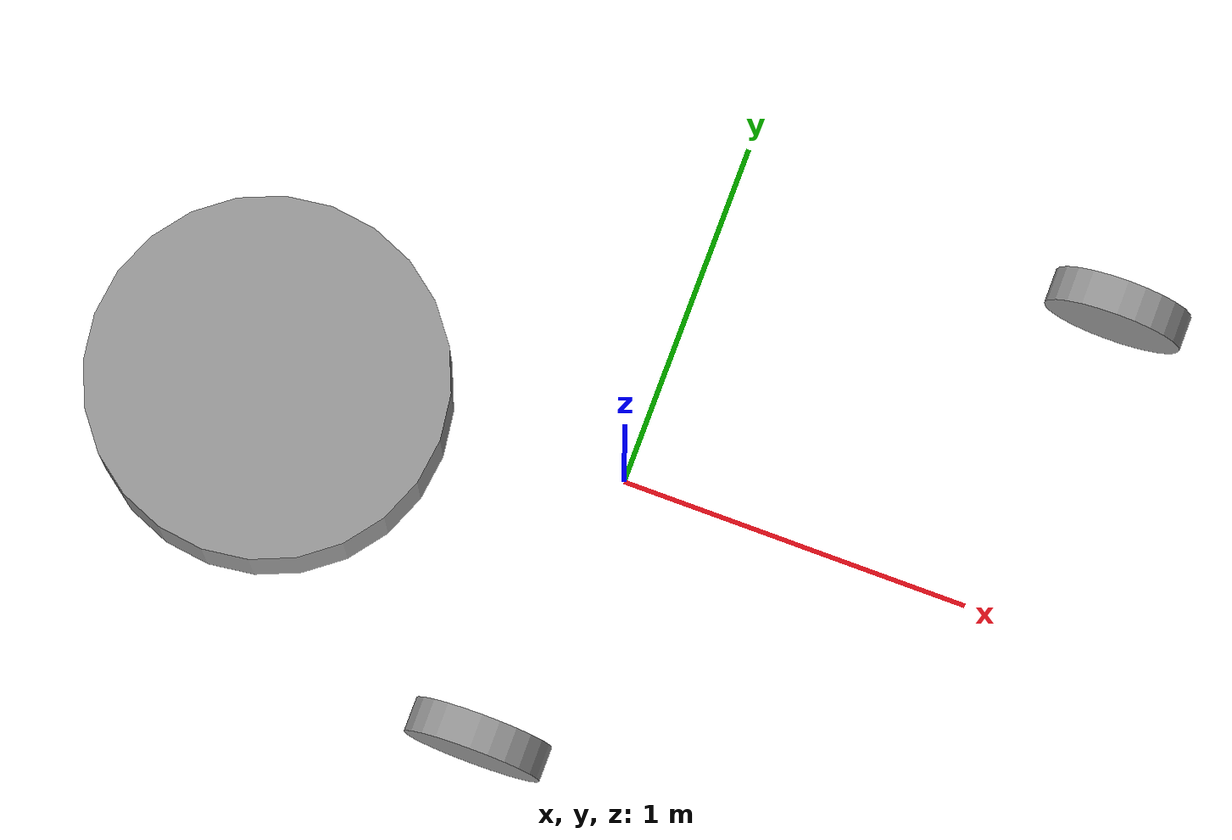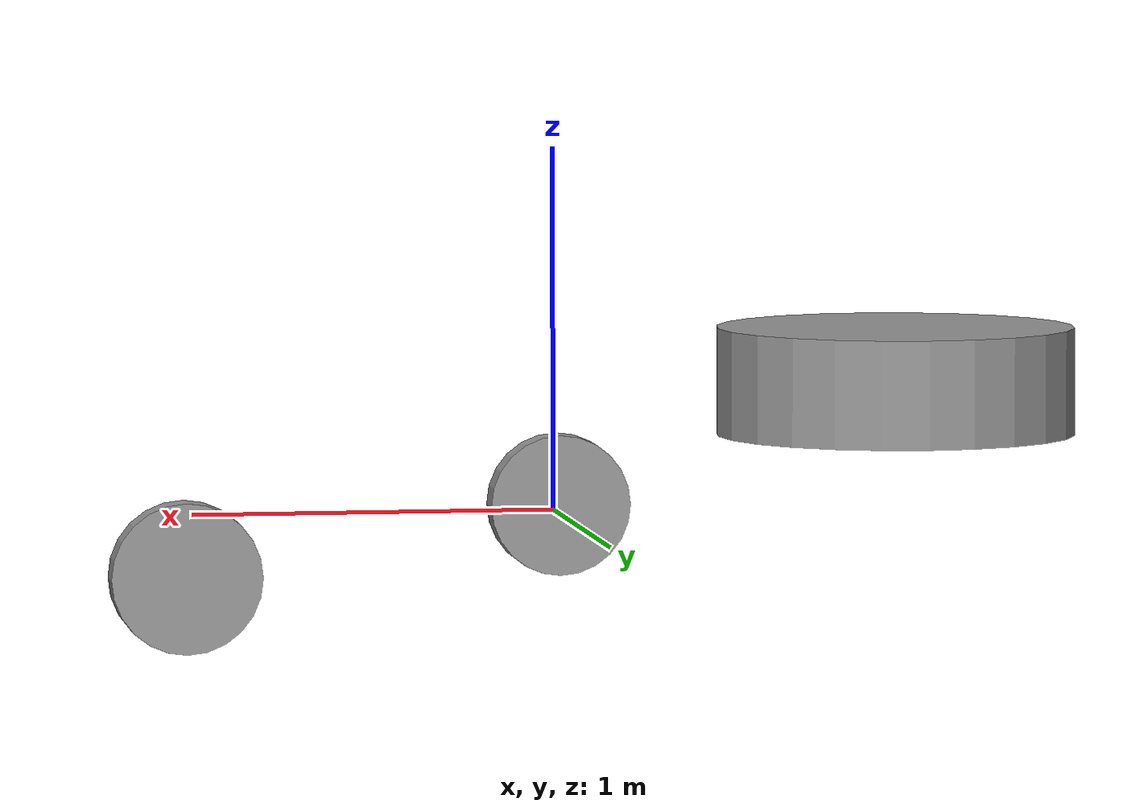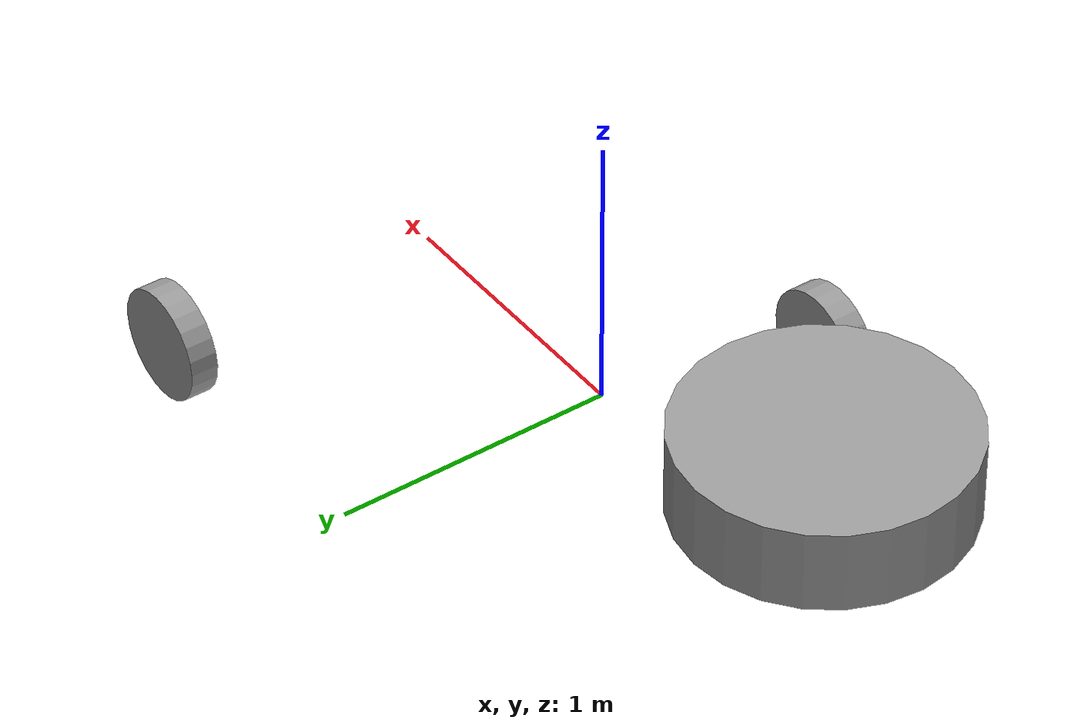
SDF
<?xml version='1.0'?>
<sdf version='1.6'>
  <model name='my_newrobot'>
    <link name='link_0_clone'>
      <pose frame=''>1.11966 0.941521 -0.066667 1.5707 -0 0</pose>
      <inertial>
        <mass>1</mass>
        <inertia>
          <ixx>0.145833</ixx>
          <ixy>0</ixy>
          <ixz>0</ixz>
          <iyy>0.145833</iyy>
          <iyz>0</iyz>
          <izz>0.125</izz>
        </inertia>
        <pose frame=''>0 0 0 0 -0 0</pose>
      </inertial>
      <self_collide>0</self_collide>
      <kinematic>0</kinematic>
      <visual name='visual'>
        <pose frame=''>0 0 0 0 -0 0</pose>
        <geometry>
          <cylinder>
            <radius>0.2</radius>
            <length>0.1</length>
          </cylinder>
        </geometry>
        <material>
          <lighting>1</lighting>
          <script>
            <uri>file://media/materials/scripts/gazebo.material</uri>
            <name>Gazebo/Grey</name>
          </script>
          <shader type='pixel'>
            <normal_map>__default__</normal_map>
          </shader>
          <ambient>0.3 0.3 0.3 1</ambient>
          <diffuse>0.7 0.7 0.7 1</diffuse>
          <specular>0.01 0.01 0.01 1</specular>
          <emissive>0 0 0 1</emissive>
        </material>
        <transparency>0</transparency>
        <cast_shadows>1</cast_shadows>
      </visual>
      <collision name='collision'>
        <laser_retro>0</laser_retro>
        <max_contacts>10</max_contacts>
        <pose frame=''>0 0 0 0 -0 0</pose>
        <geometry>
          <cylinder>
            <radius>0.2</radius>
            <length>0.1</length>
          </cylinder>
        </geometry>
        <surface>
          <friction>
            <ode>
              <mu>1</mu>
              <mu2>1</mu2>
              <fdir1>0 0 0</fdir1>
              <slip1>0</slip1>
              <slip2>0</slip2>
            </ode>
            <torsional>
              <coefficient>1</coefficient>
              <patch_radius>0</patch_radius>
              <surface_radius>0</surface_radius>
              <use_patch_radius>1</use_patch_radius>
              <ode>
                <slip>0</slip>
              </ode>
            </torsional>
          </friction>
          <bounce>
            <restitution_coefficient>0</restitution_coefficient>
            <threshold>1e+06</threshold>
          </bounce>
          <contact>
            <collide_without_contact>0</collide_without_contact>
            <collide_without_contact_bitmask>1</collide_without_contact_bitmask>
            <collide_bitmask>1</collide_bitmask>
            <ode>
              <soft_cfm>0</soft_cfm>
              <soft_erp>0.2</soft_erp>
              <kp>1e+13</kp>
              <kd>1</kd>
              <max_vel>0.01</max_vel>
              <min_depth>0</min_depth>
            </ode>
            <bullet>
              <split_impulse>1</split_impulse>
              <split_impulse_penetration_threshold>-0.01</split_impulse_penetration_threshold>
              <soft_cfm>0</soft_cfm>
              <soft_erp>0.2</soft_erp>
              <kp>1e+13</kp>
              <kd>1</kd>
            </bullet>
          </contact>
        </surface>
      </collision>
    </link>
    <link name='link_0_clone_clone'>
      <pose frame=''>-0.136268 -0.806931 -0.066667 1.5707 -0 0</pose>
      <inertial>
        <mass>1</mass>
        <inertia>
          <ixx>0.145833</ixx>
          <ixy>0</ixy>
          <ixz>0</ixz>
          <iyy>0.145833</iyy>
          <iyz>0</iyz>
          <izz>0.125</izz>
        </inertia>
        <pose frame=''>0 0 0 0 -0 0</pose>
      </inertial>
      <self_collide>0</self_collide>
      <kinematic>0</kinematic>
      <visual name='visual'>
        <pose frame=''>0 0 0 0 -0 0</pose>
        <geometry>
          <cylinder>
            <radius>0.2</radius>
            <length>0.1</length>
          </cylinder>
        </geometry>
        <material>
          <lighting>1</lighting>
          <script>
            <uri>file://media/materials/scripts/gazebo.material</uri>
            <name>Gazebo/Grey</name>
          </script>
          <shader type='pixel'>
            <normal_map>__default__</normal_map>
          </shader>
          <ambient>0.3 0.3 0.3 1</ambient>
          <diffuse>0.7 0.7 0.7 1</diffuse>
          <specular>0.01 0.01 0.01 1</specular>
          <emissive>0 0 0 1</emissive>
        </material>
        <transparency>0</transparency>
        <cast_shadows>1</cast_shadows>
      </visual>
      <collision name='collision'>
        <laser_retro>0</laser_retro>
        <max_contacts>10</max_contacts>
        <pose frame=''>0 0 0 0 -0 0</pose>
        <geometry>
          <cylinder>
            <radius>0.2</radius>
            <length>0.1</length>
          </cylinder>
        </geometry>
        <surface>
          <friction>
            <ode>
              <mu>1</mu>
              <mu2>1</mu2>
              <fdir1>0 0 0</fdir1>
              <slip1>0</slip1>
              <slip2>0</slip2>
            </ode>
            <torsional>
              <coefficient>1</coefficient>
              <patch_radius>0</patch_radius>
              <surface_radius>0</surface_radius>
              <use_patch_radius>1</use_patch_radius>
              <ode>
                <slip>0</slip>
              </ode>
            </torsional>
          </friction>
          <bounce>
            <restitution_coefficient>0</restitution_coefficient>
            <threshold>1e+06</threshold>
          </bounce>
          <contact>
            <collide_without_contact>0</collide_without_contact>
            <collide_without_contact_bitmask>1</collide_without_contact_bitmask>
            <collide_bitmask>1</collide_bitmask>
            <ode>
              <soft_cfm>0</soft_cfm>
              <soft_erp>0.2</soft_erp>
              <kp>1e+13</kp>
              <kd>1</kd>
              <max_vel>0.01</max_vel>
              <min_depth>0</min_depth>
            </ode>
            <bullet>
              <split_impulse>1</split_impulse>
              <split_impulse_penetration_threshold>-0.01</split_impulse_penetration_threshold>
              <soft_cfm>0</soft_cfm>
              <soft_erp>0.2</soft_erp>
              <kp>1e+13</kp>
              <kd>1</kd>
            </bullet>
          </contact>
        </surface>
      </collision>
    </link>
    <link name='link_1'>
      <pose frame=''>-0.983396 -0.134583 0.133333 0 -0 0</pose>
      <inertial>
        <mass>1</mass>
        <inertia>
          <ixx>0.145833</ixx>
          <ixy>0</ixy>
          <ixz>0</ixz>
          <iyy>0.145833</iyy>
          <iyz>0</iyz>
          <izz>0.125</izz>
        </inertia>
        <pose frame=''>0 0 0 0 -0 0</pose>
      </inertial>
      <gravity>1</gravity>
      <self_collide>0</self_collide>
      <kinematic>0</kinematic>
      <visual name='visual'>
        <pose frame=''>0 0 0.2 0 -0 0</pose>
        <geometry>
          <cylinder>
            <radius>0.5</radius>
            <length>0.3</length>
          </cylinder>
        </geometry>
        <material>
          <lighting>1</lighting>
          <script>
            <uri>file://media/materials/scripts/gazebo.material</uri>
            <name>Gazebo/Grey</name>
          </script>
          <shader type='pixel'>
            <normal_map>__default__</normal_map>
          </shader>
          <ambient>0.3 0.3 0.3 1</ambient>
          <diffuse>0.7 0.7 0.7 1</diffuse>
          <specular>0.01 0.01 0.01 1</specular>
          <emissive>0 0 0 1</emissive>
        </material>
        <transparency>0</transparency>
        <cast_shadows>1</cast_shadows>
      </visual>
      <collision name='collision'>
        <laser_retro>0</laser_retro>
        <max_contacts>10</max_contacts>
        <pose frame=''>0 0 0.2 0 -0 0</pose>
        <geometry>
          <cylinder>
            <radius>0.5</radius>
            <length>0.3</length>
          </cylinder>
        </geometry>
        <surface>
          <friction>
            <ode>
              <mu>1</mu>
              <mu2>1</mu2>
              <fdir1>0 0 0</fdir1>
              <slip1>0</slip1>
              <slip2>0</slip2>
            </ode>
            <torsional>
              <coefficient>1</coefficient>
              <patch_radius>0</patch_radius>
              <surface_radius>0</surface_radius>
              <use_patch_radius>1</use_patch_radius>
              <ode>
                <slip>0</slip>
              </ode>
            </torsional>
          </friction>
          <bounce>
            <restitution_coefficient>0</restitution_coefficient>
            <threshold>1e+06</threshold>
          </bounce>
          <contact>
            <collide_without_contact>0</collide_without_contact>
            <collide_without_contact_bitmask>1</collide_without_contact_bitmask>
            <collide_bitmask>1</collide_bitmask>
            <ode>
              <soft_cfm>0</soft_cfm>
              <soft_erp>0.2</soft_erp>
              <kp>1e+13</kp>
              <kd>1</kd>
              <max_vel>0.01</max_vel>
              <min_depth>0</min_depth>
            </ode>
            <bullet>
              <split_impulse>1</split_impulse>
              <split_impulse_penetration_threshold>-0.01</split_impulse_penetration_threshold>
              <soft_cfm>0</soft_cfm>
              <soft_erp>0.2</soft_erp>
              <kp>1e+13</kp>
              <kd>1</kd>
            </bullet>
          </contact>
        </surface>
      </collision>
    </link>
    <static>0</static>
    <allow_auto_disable>1</allow_auto_disable>
  </model>
</sdf>
